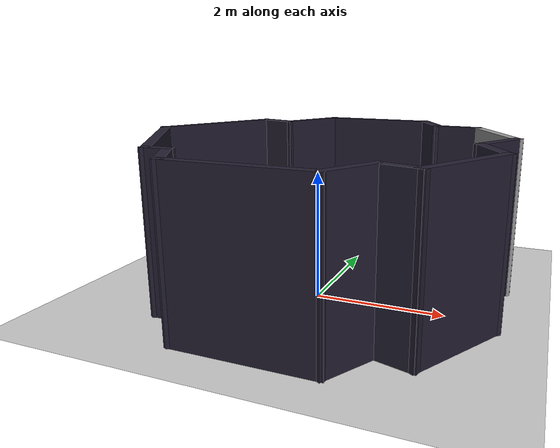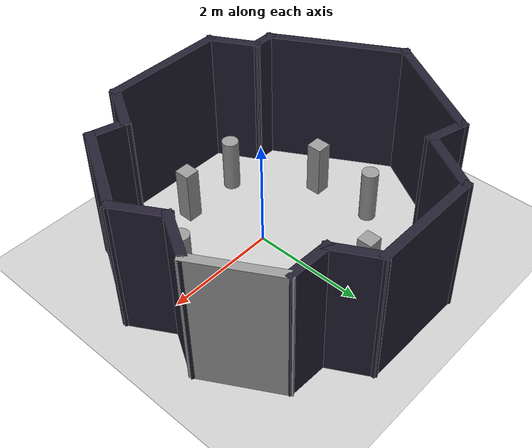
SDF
<sdf version="1.7">
 <world name="default">
  <light name="sun" type="directional">
   <pose>0 0 10 0 -0 0</pose>
   <diffuse>0.8 0.8 0.8 1</diffuse>
   <specular>0.2 0.2 0.2 1</specular>
   <attenuation>
    <range>1000</range>
    <constant>0.9</constant>
    <linear>0.01</linear>
    <quadratic>0.001</quadratic>
   </attenuation>
   <direction>-0.5 0.1 -0.9</direction>
   <spot><inner_angle>0</inner_angle><outer_angle>0</outer_angle><falloff>0</falloff></spot>
  </light>
  <model name="ground_plane">
   <static>1</static>
   <link name="link">
    <collision name="collision">
     <geometry><plane><normal>0 0 1</normal><size>100 100</size></plane></geometry>
     <surface><friction><ode><mu>100</mu><mu2>50</mu2></ode></friction></surface>
    </collision>
    <visual name="visual">
     <cast_shadows>0</cast_shadows>
     <geometry><plane><normal>0 0 1</normal><size>100 100</size></plane></geometry>
     <material>
      <script><uri>file://media/materials/scripts/gazebo.material</uri><name>Gazebo/Grey</name></script>
     </material>
    </visual>
   </link>
  </model>
  <gravity>0 0 -9.8</gravity>
  <magnetic_field>6e-06 2.3e-05 -4.2e-05</magnetic_field>
  <atmosphere type="adiabatic"/>
  <physics type="ode">
   <max_step_size>0.001</max_step_size>
   <real_time_factor>1</real_time_factor>
   <real_time_update_rate>1000</real_time_update_rate>
  </physics>
  <scene><ambient>0.4 0.4 0.4 1</ambient><background>0.7 0.7 0.7 1</background><shadows>1</shadows></scene>
  <audio><device>default</device></audio>
  <spherical_coordinates>
   <surface_model>EARTH_WGS84</surface_model>
   <latitude_deg>0</latitude_deg>
   <longitude_deg>0</longitude_deg>
   <elevation>0</elevation>
   <heading_deg>0</heading_deg>
  </spherical_coordinates>
  <model name="ModelEnd">
   <pose>-0.173061 0.415229 0 0 -0 0</pose>
   <link name="Wall_0">
    <collision name="Wall_0_Collision">
     <geometry><box><size>2.25 0.15 2.5</size></box></geometry>
     <pose>0 0 1.25 0 -0 0</pose>
    </collision>
    <visual name="Wall_0_Visual">
     <pose>0 0 1.25 0 -0 0</pose>
     <geometry><box><size>2.25 0.15 2.5</size></box></geometry>
     <material>
      <script><uri>file://media/materials/scripts/gazebo.material</uri><name>Gazebo/Grey</name></script>
      <ambient>0.141176 0.121569 0.192157 1</ambient>
     </material>
     <meta><layer>0</layer></meta>
    </visual>
    <pose>0.075222 -2.68199 0 0 -0 0</pose>
   </link>
   <link name="Wall_10">
    <collision name="Wall_10_Collision">
     <geometry><box><size>1.56697 0.15 2.5</size></box></geometry>
     <pose>0 0 1.25 0 -0 0</pose>
    </collision>
    <visual name="Wall_10_Visual">
     <pose>0 0 1.25 0 -0 0</pose>
     <geometry><box><size>1.56697 0.15 2.5</size></box></geometry>
     <material>
      <script><uri>file://media/materials/scripts/gazebo.material</uri><name>Gazebo/Grey</name></script>
      <ambient>0 0 0 1</ambient>
     </material>
     <meta><layer>0</layer></meta>
    </visual>
    <pose>2.54728 1.3713 0 0 -0 2.09156</pose>
   </link>
   <link name="Wall_11">
    <collision name="Wall_11_Collision">
     <geometry><box><size>0.84029 0.15 2.5</size></box></geometry>
     <pose>0 0 1.25 0 -0 0</pose>
    </collision>
    <visual name="Wall_11_Visual">
     <pose>0 0 1.25 0 -0 0</pose>
     <geometry><box><size>0.84029 0.15 2.5</size></box></geometry>
     <material>
      <script><uri>file://media/materials/scripts/gazebo.material</uri><name>Gazebo/Grey</name></script>
      <ambient>0.141176 0.121569 0.192157 1</ambient>
     </material>
     <meta><layer>0</layer></meta>
    </visual>
    <pose>1.83978 1.99586 0 0 -0 3.11261</pose>
   </link>
   <link name="Wall_13">
    <collision name="Wall_13_Collision">
     <geometry><box><size>0.923153 0.15 2.5</size></box></geometry>
     <pose>0 0 1.25 0 -0 0</pose>
    </collision>
    <visual name="Wall_13_Visual">
     <pose>0 0 1.25 0 -0 0</pose>
     <geometry><box><size>0.923153 0.15 2.5</size></box></geometry>
     <material>
      <script><uri>file://media/materials/scripts/gazebo.material</uri><name>Gazebo/Grey</name></script>
      <ambient>0.141176 0.121569 0.192157 1</ambient>
     </material>
     <meta><layer>0</layer></meta>
    </visual>
    <pose>1.31728 2.34392 0 0 -0 2.07719</pose>
   </link>
   <link name="Wall_15">
    <collision name="Wall_15_Collision">
     <geometry><box><size>2 0.15 2.5</size></box></geometry>
     <pose>0 0 1.25 0 -0 0</pose>
    </collision>
    <visual name="Wall_15_Visual">
     <pose>0 0 1.25 0 -0 0</pose>
     <geometry><box><size>2 0.15 2.5</size></box></geometry>
     <material>
      <script><uri>file://media/materials/scripts/gazebo.material</uri><name>Gazebo/Grey</name></script>
      <ambient>0.141176 0.121569 0.192157 1</ambient>
     </material>
     <meta><layer>0</layer></meta>
    </visual>
    <pose>0.204778 2.68199 0 0 -0 3.14159</pose>
   </link>
   <link name="Wall_16">
    <collision name="Wall_16_Collision">
     <geometry><box><size>1.25 0.15 2.5</size></box></geometry>
     <pose>0 0 1.25 0 -0 0</pose>
    </collision>
    <visual name="Wall_16_Visual">
     <pose>0 0 1.25 0 -0 0</pose>
     <geometry><box><size>1.25 0.15 2.5</size></box></geometry>
     <material>
      <script><uri>file://media/materials/scripts/gazebo.material</uri><name>Gazebo/Grey</name></script>
      <ambient>0.141176 0.121569 0.192157 1</ambient>
     </material>
     <meta><layer>0</layer></meta>
    </visual>
    <pose>-0.995222 2.20567 0 0 -0 -2.0944</pose>
   </link>
   <link name="Wall_18">
    <collision name="Wall_18_Collision">
     <geometry><box><size>0.75 0.15 2.5</size></box></geometry>
     <pose>0 0 1.25 0 -0 0</pose>
    </collision>
    <visual name="Wall_18_Visual">
     <pose>0 0 1.25 0 -0 0</pose>
     <geometry><box><size>0.75 0.15 2.5</size></box></geometry>
     <material>
      <script><uri>file://media/materials/scripts/gazebo.material</uri><name>Gazebo/Grey</name></script>
      <ambient>0.141176 0.121569 0.192157 1</ambient>
     </material>
     <meta><layer>0</layer></meta>
    </visual>
    <pose>-1.56 1.807 0 0 -0 2.87979</pose>
   </link>
   <link name="Wall_2">
    <collision name="Wall_2_Collision">
     <geometry><box><size>1 0.15 2.5</size></box></geometry>
     <pose>0 0 1.25 0 -0 0</pose>
    </collision>
    <visual name="Wall_2_Visual">
     <pose>0 0 1.25 0 -0 0</pose>
     <geometry><box><size>1 0.15 2.5</size></box></geometry>
     <material>
      <script><uri>file://media/materials/scripts/gazebo.material</uri><name>Gazebo/Grey</name></script>
      <ambient>0.141176 0.121569 0.192157 1</ambient>
     </material>
     <meta><layer>0</layer></meta>
    </visual>
    <pose>1.33772 -2.31392 0 0 -0 1.0472</pose>
   </link>
   <link name="Wall_20">
    <collision name="Wall_20_Collision">
     <geometry><box><size>2.25 0.15 2.5</size></box></geometry>
     <pose>0 0 1.25 0 -0 0</pose>
    </collision>
    <visual name="Wall_20_Visual">
     <pose>0 0 1.25 0 -0 0</pose>
     <geometry><box><size>2.25 0.15 2.5</size></box></geometry>
     <material>
      <script><uri>file://media/materials/scripts/gazebo.material</uri><name>Gazebo/Grey</name></script>
      <ambient>0.141176 0.121569 0.192157 1</ambient>
     </material>
     <meta><layer>0</layer></meta>
    </visual>
    <pose>-2.37478 0.975322 0 0 -0 -2.0944</pose>
   </link>
   <link name="Wall_23">
    <collision name="Wall_23_Collision">
     <geometry><box><size>2.5 0.15 2.5</size></box></geometry>
     <pose>0 0 1.25 0 -0 0</pose>
    </collision>
    <visual name="Wall_23_Visual">
     <pose>0 0 1.25 0 -0 0</pose>
     <geometry><box><size>2.5 0.15 2.5</size></box></geometry>
     <material>
      <script><uri>file://media/materials/scripts/gazebo.material</uri><name>Gazebo/Grey</name></script>
      <ambient>0.141176 0.121569 0.192157 1</ambient>
     </material>
     <meta><layer>0</layer></meta>
    </visual>
    <pose>-2.31228 -0.951585 0 0 -0 -1.0472</pose>
   </link>
   <link name="Wall_24">
    <collision name="Wall_24_Collision">
     <geometry><box><size>0.5 0.15 2.5</size></box></geometry>
     <pose>0 0 1.25 0 -0 0</pose>
    </collision>
    <visual name="Wall_24_Visual">
     <pose>0 0 1.25 0 -0 0</pose>
     <geometry><box><size>0.5 0.15 2.5</size></box></geometry>
     <material>
      <script><uri>file://media/materials/scripts/gazebo.material</uri><name>Gazebo/Grey</name></script>
      <ambient>0.141176 0.121569 0.192157 1</ambient>
     </material>
     <meta><layer>0</layer></meta>
    </visual>
    <pose>-1.54978 -1.96917 0 0 -0 0</pose>
   </link>
   <link name="Wall_25">
    <collision name="Wall_25_Collision">
     <geometry><box><size>0.967382 0.15 2.5</size></box></geometry>
     <pose>0 0 1.25 0 -0 0</pose>
    </collision>
    <visual name="Wall_25_Visual">
     <pose>0 0 1.25 0 -0 0</pose>
     <geometry><box><size>0.967382 0.15 2.5</size></box></geometry>
     <material>
      <script><uri>file://media/materials/scripts/gazebo.material</uri><name>Gazebo/Grey</name></script>
      <ambient>0.141176 0.121569 0.192157 1</ambient>
     </material>
     <meta><layer>0</layer></meta>
    </visual>
    <pose>-1.17478 -2.32558 0 0 -0 -1.05943</pose>
   </link>
   <link name="Wall_3">
    <collision name="Wall_3_Collision">
     <geometry><box><size>0.730705 0.15 2.5</size></box></geometry>
     <pose>0 0 1.25 0 -0 0</pose>
    </collision>
    <visual name="Wall_3_Visual">
     <pose>0 0 1.25 0 -0 0</pose>
     <geometry><box><size>0.730705 0.15 2.5</size></box></geometry>
     <material>
      <script><uri>file://media/materials/scripts/gazebo.material</uri><name>Gazebo/Grey</name></script>
      <ambient>0.141176 0.121569 0.192157 1</ambient>
     </material>
     <meta><layer>0</layer></meta>
    </visual>
    <pose>1.83 -2.02351 0 0 -0 -0.270713</pose>
   </link>
   <link name="Wall_4">
    <collision name="Wall_4_Collision">
     <geometry><box><size>1.75 0.15 2.5</size></box></geometry>
     <pose>0 0 1.25 0 -0 0</pose>
    </collision>
    <visual name="Wall_4_Visual">
     <pose>0 0 1.25 0 -0 0</pose>
     <geometry><box><size>1.75 0.15 2.5</size></box></geometry>
     <material>
      <script><uri>file://media/materials/scripts/gazebo.material</uri><name>Gazebo/Grey</name></script>
      <ambient>0.141176 0.121569 0.192157 1</ambient>
     </material>
     <meta><layer>0</layer></meta>
    </visual>
    <pose>2.49978 -1.40833 0 0 -0 1.0472</pose>
   </link>
   <link name="Wall_6">
    <collision name="Wall_6_Collision">
     <geometry><box><size>1 0.15 2.5</size></box></geometry>
     <pose>0 0 1.25 0 -0 0</pose>
    </collision>
    <visual name="Wall_6_Visual">
     <pose>0 0 1.25 0 -0 0</pose>
     <geometry><box><size>1 0.15 2.5</size></box></geometry>
     <material>
      <script><uri>file://media/materials/scripts/gazebo.material</uri><name>Gazebo/Grey</name></script>
      <ambient>0.141176 0.121569 0.192157 1</ambient>
     </material>
     <meta><layer>0</layer></meta>
    </visual>
    <pose>2.68728 -0.347453 0 0 -0 2.0944</pose>
   </link>
   <link name="Wall_8">
    <collision name="Wall_8_Collision">
     <geometry><box><size>1 0.15 2.5</size></box></geometry>
     <pose>0 0 1.25 0 -0 0</pose>
    </collision>
    <visual name="Wall_8_Visual">
     <pose>0 0 1.25 0 -0 0</pose>
     <geometry><box><size>1 0.15 2.5</size></box></geometry>
     <material>
      <script><uri>file://media/materials/scripts/gazebo.material</uri><name>Gazebo/Grey</name></script>
      <ambient>0.141176 0.121569 0.192157 1</ambient>
     </material>
     <meta><layer>0</layer></meta>
    </visual>
    <pose>2.68728 0.388668 0 0 -0 1.0472</pose>
   </link>
   <static>1</static>
  </model>
  <model name="unit_cylinder_clone">
   <pose>-0.651507 -1.37678 0.499993 0 -0 7e-06</pose>
   <link name="link">
    <inertial>
     <mass>1</mass>
     <inertia><ixx>0.145833</ixx><ixy>0</ixy><ixz>0</ixz><iyy>0.145833</iyy><iyz>0</iyz><izz>0.125</izz></inertia>
    </inertial>
    <collision name="collision">
     <geometry><cylinder><radius>0.147139</radius><length>1</length></cylinder></geometry>
    </collision>
    <visual name="visual">
     <geometry><cylinder><radius>0.147139</radius><length>1</length></cylinder></geometry>
     <material>
      <script><name>Gazebo/Grey</name><uri>file://media/materials/scripts/gazebo.material</uri></script>
     </material>
    </visual>
   </link>
  </model>
  <model name="unit_cylinder_clone_0">
   <pose>0.546744 1.82055 0.499993 0 -0 7e-06</pose>
   <link name="link">
    <inertial>
     <mass>1</mass>
     <inertia><ixx>0.145833</ixx><ixy>0</ixy><ixz>0</ixz><iyy>0.145833</iyy><iyz>0</iyz><izz>0.125</izz></inertia>
    </inertial>
    <collision name="collision">
     <geometry><cylinder><radius>0.147139</radius><length>1</length></cylinder></geometry>
    </collision>
    <visual name="visual">
     <geometry><cylinder><radius>0.147139</radius><length>1</length></cylinder></geometry>
     <material>
      <script><name>Gazebo/Grey</name><uri>file://media/materials/scripts/gazebo.material</uri></script>
     </material>
    </visual>
   </link>
  </model>
  <model name="unit_box_clone">
   <pose>-1.61126 -0.152911 0.500005 -1e-06 1e-06 -2.5e-05</pose>
   <link name="link">
    <inertial>
     <mass>1</mass>
     <inertia>
      <ixx>0.166667</ixx>
      <ixy>0</ixy>
      <ixz>0</ixz>
      <iyy>0.166667</iyy>
      <iyz>0</iyz>
      <izz>0.166667</izz>
     </inertia>
    </inertial>
    <collision name="collision"><geometry><box><size>0.26512 0.27365 1</size></box></geometry></collision>
    <visual name="visual">
     <geometry><box><size>0.26512 0.27365 1</size></box></geometry>
     <material>
      <script><name>Gazebo/Grey</name><uri>file://media/materials/scripts/gazebo.material</uri></script>
     </material>
    </visual>
   </link>
  </model>
  <model name="unit_box_clone_0">
   <pose>0.408245 -1.35681 0.500002 -1e-06 1e-06 -2.5e-05</pose>
   <link name="link">
    <inertial>
     <mass>1</mass>
     <inertia>
      <ixx>0.166667</ixx>
      <ixy>0</ixy>
      <ixz>0</ixz>
      <iyy>0.166667</iyy>
      <iyz>0</iyz>
      <izz>0.166667</izz>
     </inertia>
    </inertial>
    <collision name="collision"><geometry><box><size>0.26512 0.27365 1</size></box></geometry></collision>
    <visual name="visual">
     <geometry><box><size>0.26512 0.27365 1</size></box></geometry>
     <material>
      <script><name>Gazebo/Grey</name><uri>file://media/materials/scripts/gazebo.material</uri></script>
     </material>
    </visual>
   </link>
  </model>
  <model name="unit_cylinder_clone_clone_0">
   <pose>-1.6393 0.966319 0.499993 0 -0 7e-06</pose>
   <link name="link">
    <inertial>
     <mass>1</mass>
     <inertia><ixx>0.145833</ixx><ixy>0</ixy><ixz>0</ixz><iyy>0.145833</iyy><iyz>0</iyz><izz>0.125</izz></inertia>
    </inertial>
    <collision name="collision">
     <geometry><cylinder><radius>0.147139</radius><length>1</length></cylinder></geometry>
    </collision>
    <visual name="visual">
     <geometry><cylinder><radius>0.147139</radius><length>1</length></cylinder></geometry>
     <material>
      <script><name>Gazebo/Grey</name><uri>file://media/materials/scripts/gazebo.material</uri></script>
     </material>
    </visual>
   </link>
  </model>
  <model name="unit_box_clone_0_clone">
   <pose>-0.382774 1.9146 0.5 -1e-06 1e-06 -2.5e-05</pose>
   <link name="link">
    <inertial>
     <mass>1</mass>
     <inertia>
      <ixx>0.166667</ixx>
      <ixy>0</ixy>
      <ixz>0</ixz>
      <iyy>0.166667</iyy>
      <iyz>0</iyz>
      <izz>0.166667</izz>
     </inertia>
    </inertial>
    <collision name="collision"><geometry><box><size>0.26512 0.27365 1</size></box></geometry></collision>
    <visual name="visual">
     <geometry><box><size>0.26512 0.27365 1</size></box></geometry>
     <material>
      <script><name>Gazebo/Grey</name><uri>file://media/materials/scripts/gazebo.material</uri></script>
     </material>
    </visual>
   </link>
  </model>
  <model name="unit_box_clone_0_clone_0">
   <pose>1.54217 0.724363 0.500002 -1e-06 1e-06 -2.5e-05</pose>
   <link name="link">
    <inertial>
     <mass>1</mass>
     <inertia>
      <ixx>0.166667</ixx>
      <ixy>0</ixy>
      <ixz>0</ixz>
      <iyy>0.166667</iyy>
      <iyz>0</iyz>
      <izz>0.166667</izz>
     </inertia>
    </inertial>
    <collision name="collision"><geometry><box><size>0.26512 0.27365 1</size></box></geometry></collision>
    <visual name="visual">
     <geometry><box><size>0.26512 0.27365 1</size></box></geometry>
     <material>
      <script><name>Gazebo/Grey</name><uri>file://media/materials/scripts/gazebo.material</uri></script>
     </material>
    </visual>
   </link>
  </model>
  <model name="unit_cylinder_clone_clone">
   <pose>1.51321 -0.324645 0.499993 0 -0 7e-06</pose>
   <link name="link">
    <inertial>
     <mass>1</mass>
     <inertia><ixx>0.145833</ixx><ixy>0</ixy><ixz>0</ixz><iyy>0.145833</iyy><iyz>0</iyz><izz>0.125</izz></inertia>
    </inertial>
    <collision name="collision">
     <geometry><cylinder><radius>0.147139</radius><length>1</length></cylinder></geometry>
    </collision>
    <visual name="visual">
     <geometry><cylinder><radius>0.147139</radius><length>1</length></cylinder></geometry>
     <material>
      <script><name>Gazebo/Grey</name><uri>file://media/materials/scripts/gazebo.material</uri></script>
     </material>
    </visual>
   </link>
  </model>
 </world>
</sdf>
